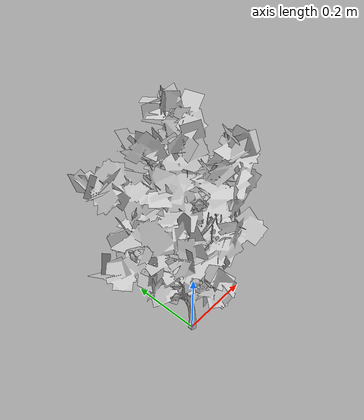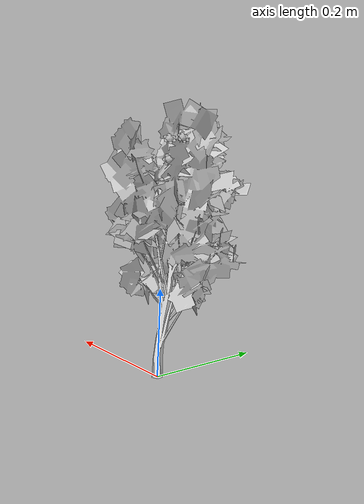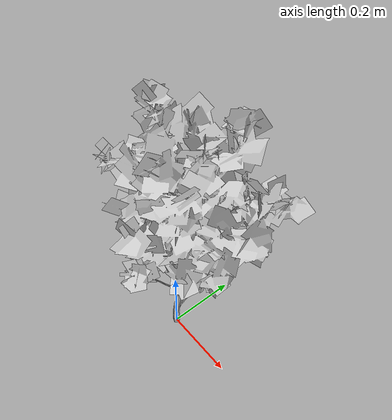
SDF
<?xml version="1.0" ?>
<sdf version="1.6">
  <model name="tree-flowers">
    <!--Skew-Seed:4145387398-->
    <static>true</static>
    <link name="link"/>
    <include>
      <uri>model://tree-mesh</uri>
      <pose>0 0 0 0 0 0</pose>
    </include>
    <joint name="tree_joint" type="fixed">
      <child>tree-mesh::link</child>
      <parent>link</parent>
    </joint>
    <include>
      <name>bramble_0</name>
      <uri>model://bramble</uri>
      <pose> 0.10894351898096549 0.09204575065952957 0.34860160795368655 -1.4739460146238526 2.2243086149933413 0.0</pose>
    </include>
    <joint name="flower_joint_0" type="fixed">
      <child>bramble_0::flower_link</child>
      <parent>link</parent>
    </joint>
    <include>
      <name>bramble_1</name>
      <uri>model://bramble</uri>
      <pose> -0.11033094449608528 0.09842909191045415 0.5316008378191895 -2.434315881165635 1.7015731677589108 0.0</pose>
    </include>
    <joint name="flower_joint_1" type="fixed">
      <child>bramble_1::flower_link</child>
      <parent>link</parent>
    </joint>
    <include>
      <name>bramble_2</name>
      <uri>model://bramble</uri>
      <pose> 0.11335899171036648 0.10168563960982215 0.5361858559737465 -0.8092658292477436 1.7246174696860748 0.0</pose>
    </include>
    <joint name="flower_joint_2" type="fixed">
      <child>bramble_2::flower_link</child>
      <parent>link</parent>
    </joint>
    <include>
      <name>bramble_3</name>
      <uri>model://bramble</uri>
      <pose> 0.08533901016952797 0.06184653201233814 0.42696646179187225 -0.7925896209744328 1.7175217913938177 0.0</pose>
    </include>
    <joint name="flower_joint_3" type="fixed">
      <child>bramble_3::flower_link</child>
      <parent>link</parent>
    </joint>
    <include>
      <name>bramble_4</name>
      <uri>model://bramble</uri>
      <pose> 0.05616399684704988 -0.03307644857914044 0.3515897620842654 0.7610124791401589 2.0531741845180864 0.0</pose>
    </include>
    <joint name="flower_joint_4" type="fixed">
      <child>bramble_4::flower_link</child>
      <parent>link</parent>
    </joint>
    <include>
      <name>bramble_5</name>
      <uri>model://bramble</uri>
      <pose> 0.06756091134790788 -0.04430239640807755 0.5996455231762234 0.7102562645658488 1.4066379705888976 0.0</pose>
    </include>
    <joint name="flower_joint_5" type="fixed">
      <child>bramble_5::flower_link</child>
      <parent>link</parent>
    </joint>
    <include>
      <name>bramble_6</name>
      <uri>model://bramble</uri>
      <pose> 0.08630518108857854 0.12181950701968013 0.553700276002951 -1.068584267324184 1.863041767245383 0.0</pose>
    </include>
    <joint name="flower_joint_6" type="fixed">
      <child>bramble_6::flower_link</child>
      <parent>link</parent>
    </joint>
    <include>
      <name>bramble_7</name>
      <uri>model://bramble</uri>
      <pose> -0.1399307810909606 0.05025006623810224 0.5127330140878811 -2.163667229751744 2.0719817329665053 0.0</pose>
    </include>
    <joint name="flower_joint_7" type="fixed">
      <child>bramble_7::flower_link</child>
      <parent>link</parent>
    </joint>
    <include>
      <name>bramble_8</name>
      <uri>model://bramble</uri>
      <pose> -0.053135244017963074 -0.03258491261908189 0.40501867242550565 -3.542454997410537 1.6822005138268827 0.0</pose>
    </include>
    <joint name="flower_joint_8" type="fixed">
      <child>bramble_8::flower_link</child>
      <parent>link</parent>
    </joint>
    <include>
      <name>bramble_9</name>
      <uri>model://bramble</uri>
      <pose> -0.10546222842637 -0.0366070021083709 0.3132391903015171 -3.6993642180080806 0.9454324890697687 0.0</pose>
    </include>
    <joint name="flower_joint_9" type="fixed">
      <child>bramble_9::flower_link</child>
      <parent>link</parent>
    </joint>
    <include>
      <name>bramble_10</name>
      <uri>model://bramble</uri>
      <pose> -0.1492208599943088 0.05434933594239163 0.38354619038229243 -3.1158339336270213 1.667442372472759 0.0</pose>
    </include>
    <joint name="flower_joint_10" type="fixed">
      <child>bramble_10::flower_link</child>
      <parent>link</parent>
    </joint>
    <include>
      <name>bramble_11</name>
      <uri>model://bramble</uri>
      <pose> -0.14013836750616832 0.10107784889143523 0.5737064024044487 -1.8922028902294603 1.1772843842679757 0.0</pose>
    </include>
    <joint name="flower_joint_11" type="fixed">
      <child>bramble_11::flower_link</child>
      <parent>link</parent>
    </joint>
    <include>
      <name>bramble_12</name>
      <uri>model://bramble</uri>
      <pose> -0.09276985257351417 0.0864141137139324 0.345470525660735 -3.120601106489618 1.4522516194141712 0.0</pose>
    </include>
    <joint name="flower_joint_12" type="fixed">
      <child>bramble_12::flower_link</child>
      <parent>link</parent>
    </joint>
    <include>
      <name>bramble_13</name>
      <uri>model://bramble</uri>
      <pose> -0.12365123573114492 -0.04959128897614423 0.3036914470980374 -4.3028779949016265 1.4108945818417915 0.0</pose>
    </include>
    <joint name="flower_joint_13" type="fixed">
      <child>bramble_13::flower_link</child>
      <parent>link</parent>
    </joint>
    <include>
      <name>bramble_14</name>
      <uri>model://bramble</uri>
      <pose> -0.09188535931020046 0.06752540695355733 0.40316186903528584 -2.13508969197614 1.2573280281292178 0.0</pose>
    </include>
    <joint name="flower_joint_14" type="fixed">
      <child>bramble_14::flower_link</child>
      <parent>link</parent>
    </joint>
    <include>
      <name>bramble_15</name>
      <uri>model://bramble</uri>
      <pose> -0.06592155036619235 -0.06180323280297312 0.5674718577630951 -4.095199570390556 1.6118082562051916 0.0</pose>
    </include>
    <joint name="flower_joint_15" type="fixed">
      <child>bramble_15::flower_link</child>
      <parent>link</parent>
    </joint>
    <include>
      <name>bramble_16</name>
      <uri>model://bramble</uri>
      <pose> -0.07203826373084635 -0.070580906817397 0.3224525424877182 -3.181438086164995 2.17321135795512 0.0</pose>
    </include>
    <joint name="flower_joint_16" type="fixed">
      <child>bramble_16::flower_link</child>
      <parent>link</parent>
    </joint>
    <include>
      <name>bramble_17</name>
      <uri>model://bramble</uri>
      <pose> 0.07480862803578821 0.07281362766259664 0.5145103551105632 -0.4867821673397854 2.152748036697858 0.0</pose>
    </include>
    <joint name="flower_joint_17" type="fixed">
      <child>bramble_17::flower_link</child>
      <parent>link</parent>
    </joint>
    <include>
      <name>bramble_18</name>
      <uri>model://bramble</uri>
      <pose> -0.05874307419829855 -0.05270439956379827 0.5467595366615947 -4.22349472195312 1.1102421498209054 0.0</pose>
    </include>
    <joint name="flower_joint_18" type="fixed">
      <child>bramble_18::flower_link</child>
      <parent>link</parent>
    </joint>
  </model>
</sdf>

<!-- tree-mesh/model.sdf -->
<sdf version="1.6">
  <model name="tree-mesh">
    <static>true</static>
    <link name="link">

      <collision name="collision">
        <geometry>
          <mesh>
            <uri>model://tree-mesh/meshes/new_tree.dae</uri>
            <scale>0.0625 0.0625 0.0625</scale>
          </mesh>
        </geometry>
      </collision>

      <!-- simplified collision for sake of speed since leaves shouldn't be blocking anyway -->

      <visual name="leaves">
        <geometry>
          <mesh>
            <uri>model://tree-mesh/meshes/leaves.dae</uri>
            <scale>0.0325 0.0325 0.0325</scale>
          </mesh>
        </geometry>
        <material>
          <script>
            <uri>model://tree-mesh/materials/scripts/</uri>
            <uri>model://tree-mesh/materials/textures/</uri>
            <name>NewTree/Branch</name>
          </script>
        </material>
      </visual>
      <visual name="bark">
        <geometry>
          <mesh>
            <uri>model://tree-mesh/meshes/bark.dae</uri>
            <scale>0.0325 0.0325 0.0325</scale>
          </mesh>
        </geometry>
        <material>
          <script>
            <uri>model://tree-mesh/materials/scripts/</uri>
            <uri>model://tree-mesh/materials/textures/</uri>
            <name>NewTree/Bark</name>
          </script>
        </material>
      </visual>
    </link>
  </model>
</sdf>

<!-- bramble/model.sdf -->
<sdf version="1.6">
  <model name="bramble">
    <static>true</static>
    <link name="flower_link">
      <collision name="body_collision">
        <geometry>
          <mesh>
            <uri>model://bramble/meshes/bramble.dae</uri>
            <scale>0.2 0.2 0.2</scale>
          </mesh>
        </geometry>
      </collision>
      <visual name="petals">
        <geometry>
          <mesh>
            <uri>model://bramble/meshes/bramble.dae</uri>
            <scale>0.2 0.2 0.2</scale>
            <submesh>
              <name>petal</name>
            </submesh>
          </mesh>
        </geometry>
        <material>
          <script>
            <uri>model://bramble/materials/scripts/</uri>
            <uri>model://bramble/materials/textures/</uri>
            <name>Bramble/Petal</name>
          </script>
        </material>
      </visual>
      <visual name="carpel">
        <geometry>
          <mesh>
            <uri>model://bramble/meshes/bramble.dae</uri>
            <scale>0.2 0.2 0.2</scale>
            <submesh>
              <name>carpel</name>
            </submesh>
          </mesh>
        </geometry>
        <material>
          <script>
            <uri>model://bramble/materials/scripts/</uri>
            <uri>model://bramble/materials/textures/</uri>
            <name>Bramble/Carpel</name>
          </script>
        </material>
      </visual>
      <visual name="stamen">
        <geometry>
          <mesh>
            <uri>model://bramble/meshes/bramble.dae</uri>
            <scale>0.2 0.2 0.2</scale>
            <submesh>
              <name>stamen</name>
            </submesh>
          </mesh>
        </geometry>
        <material>
          <script>
            <uri>model://bramble/materials/scripts/</uri>
            <uri>model://bramble/materials/textures/</uri>
            <name>Bramble/Stamen</name>
          </script>
        </material>
      </visual>
    </link>
  </model>
</sdf>
